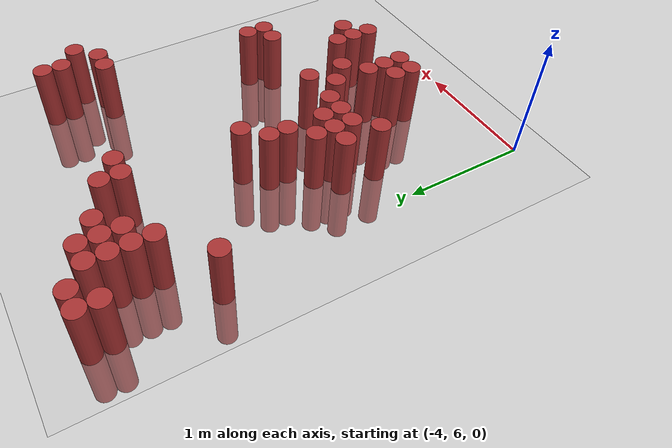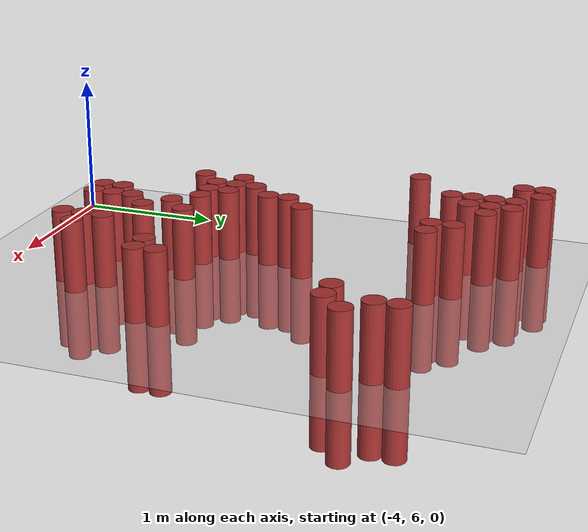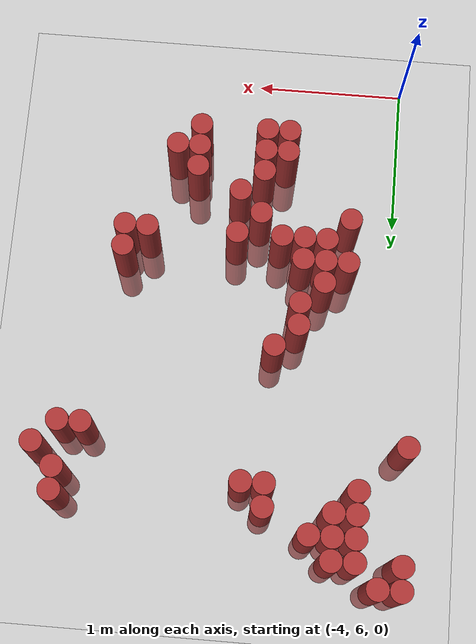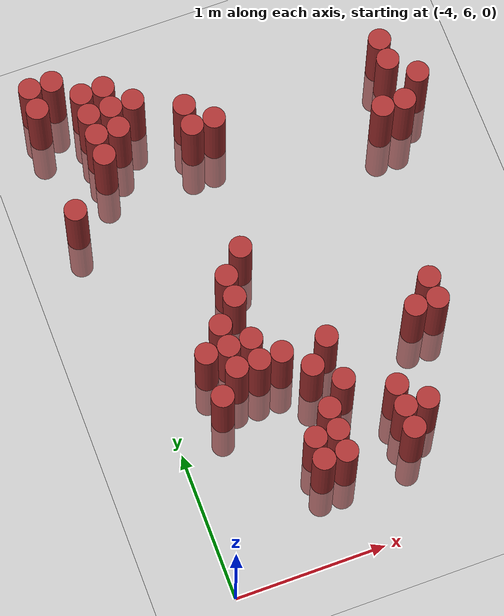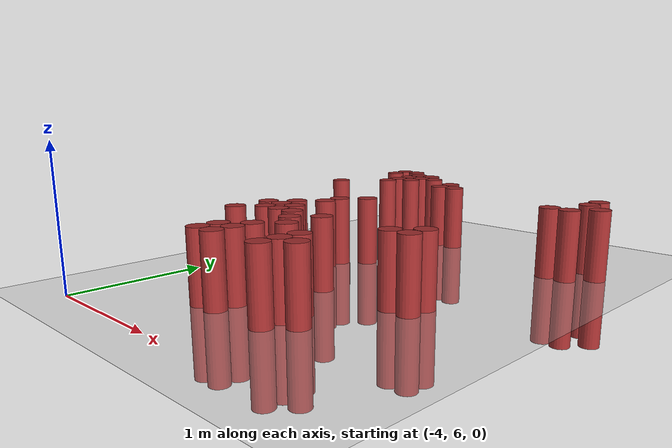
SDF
<sdf version="1.6">
 <world name="world_62">
  <model name="ground_plane">
   <static>1</static>
   <link name="link">
    <collision name="collision">
     <geometry><plane><normal>0 0 1</normal><size>100 100</size></plane></geometry>
     <surface><friction><ode><mu>100</mu><mu2>50</mu2></ode></friction></surface>
    </collision>
    <visual name="visual">
     <cast_shadows>0</cast_shadows>
     <geometry><plane><normal>0 0 1</normal><size>100 100</size></plane></geometry>
     <material>
      <script><uri>file://media/materials/scripts/gazebo.material</uri><name>Gazebo/Grey</name></script>
     </material>
    </visual>
   </link>
  </model>
  <model name="unit_cylinder_150">
   <static>1</static>
   <pose>-4.125000 8.625000 0.000000 0.000000 0.000000 0.000000</pose>
   <link name="link">
    <inertial>
     <mass>1</mass>
     <inertia><ixx>0.145833</ixx><ixy>0</ixy><ixz>0</ixz><iyy>0.145833</iyy><iyz>0</iyz><izz>0.125</izz></inertia>
    </inertial>
    <collision name="collision">
     <geometry><cylinder><radius>0.075000</radius><length>1</length></cylinder></geometry>
    </collision>
    <visual name="visual">
     <geometry><cylinder><radius>0.075000</radius><length>1</length></cylinder></geometry>
     <material>
      <ambient>0.648000 0.192000 0.192000 1</ambient>
      <diffuse>0.648000 0.192000 0.192000 1</diffuse>
     </material>
     <material>
      <script><name>Gazebo/Grey</name><uri>file://media/materials/scripts/gazebo.material</uri></script>
     </material>
    </visual>
   </link>
  </model>
  <model name="unit_cylinder_151">
   <static>1</static>
   <pose>-4.125000 9.375000 0.000000 0.000000 0.000000 0.000000</pose>
   <link name="link">
    <inertial>
     <mass>1</mass>
     <inertia><ixx>0.145833</ixx><ixy>0</ixy><ixz>0</ixz><iyy>0.145833</iyy><iyz>0</iyz><izz>0.125</izz></inertia>
    </inertial>
    <collision name="collision">
     <geometry><cylinder><radius>0.075000</radius><length>1</length></cylinder></geometry>
    </collision>
    <visual name="visual">
     <geometry><cylinder><radius>0.075000</radius><length>1</length></cylinder></geometry>
     <material>
      <ambient>0.648000 0.192000 0.192000 1</ambient>
      <diffuse>0.648000 0.192000 0.192000 1</diffuse>
     </material>
     <material>
      <script><name>Gazebo/Grey</name><uri>file://media/materials/scripts/gazebo.material</uri></script>
     </material>
    </visual>
   </link>
  </model>
  <model name="unit_cylinder_152">
   <static>1</static>
   <pose>-4.125000 9.525000 0.000000 0.000000 0.000000 0.000000</pose>
   <link name="link">
    <inertial>
     <mass>1</mass>
     <inertia><ixx>0.145833</ixx><ixy>0</ixy><ixz>0</ixz><iyy>0.145833</iyy><iyz>0</iyz><izz>0.125</izz></inertia>
    </inertial>
    <collision name="collision">
     <geometry><cylinder><radius>0.075000</radius><length>1</length></cylinder></geometry>
    </collision>
    <visual name="visual">
     <geometry><cylinder><radius>0.075000</radius><length>1</length></cylinder></geometry>
     <material>
      <ambient>0.648000 0.192000 0.192000 1</ambient>
      <diffuse>0.648000 0.192000 0.192000 1</diffuse>
     </material>
     <material>
      <script><name>Gazebo/Grey</name><uri>file://media/materials/scripts/gazebo.material</uri></script>
     </material>
    </visual>
   </link>
  </model>
  <model name="unit_cylinder_157">
   <static>1</static>
   <pose>-3.975000 9.525000 0.000000 0.000000 0.000000 0.000000</pose>
   <link name="link">
    <inertial>
     <mass>1</mass>
     <inertia><ixx>0.145833</ixx><ixy>0</ixy><ixz>0</ixz><iyy>0.145833</iyy><iyz>0</iyz><izz>0.125</izz></inertia>
    </inertial>
    <collision name="collision">
     <geometry><cylinder><radius>0.075000</radius><length>1</length></cylinder></geometry>
    </collision>
    <visual name="visual">
     <geometry><cylinder><radius>0.075000</radius><length>1</length></cylinder></geometry>
     <material>
      <ambient>0.648000 0.192000 0.192000 1</ambient>
      <diffuse>0.648000 0.192000 0.192000 1</diffuse>
     </material>
     <material>
      <script><name>Gazebo/Grey</name><uri>file://media/materials/scripts/gazebo.material</uri></script>
     </material>
    </visual>
   </link>
  </model>
  <model name="unit_cylinder_160">
   <static>1</static>
   <pose>-3.825000 8.925000 0.000000 0.000000 0.000000 0.000000</pose>
   <link name="link">
    <inertial>
     <mass>1</mass>
     <inertia><ixx>0.145833</ixx><ixy>0</ixy><ixz>0</ixz><iyy>0.145833</iyy><iyz>0</iyz><izz>0.125</izz></inertia>
    </inertial>
    <collision name="collision">
     <geometry><cylinder><radius>0.075000</radius><length>1</length></cylinder></geometry>
    </collision>
    <visual name="visual">
     <geometry><cylinder><radius>0.075000</radius><length>1</length></cylinder></geometry>
     <material>
      <ambient>0.648000 0.192000 0.192000 1</ambient>
      <diffuse>0.648000 0.192000 0.192000 1</diffuse>
     </material>
     <material>
      <script><name>Gazebo/Grey</name><uri>file://media/materials/scripts/gazebo.material</uri></script>
     </material>
    </visual>
   </link>
  </model>
  <model name="unit_cylinder_161">
   <static>1</static>
   <pose>-3.825000 9.075000 0.000000 0.000000 0.000000 0.000000</pose>
   <link name="link">
    <inertial>
     <mass>1</mass>
     <inertia><ixx>0.145833</ixx><ixy>0</ixy><ixz>0</ixz><iyy>0.145833</iyy><iyz>0</iyz><izz>0.125</izz></inertia>
    </inertial>
    <collision name="collision">
     <geometry><cylinder><radius>0.075000</radius><length>1</length></cylinder></geometry>
    </collision>
    <visual name="visual">
     <geometry><cylinder><radius>0.075000</radius><length>1</length></cylinder></geometry>
     <material>
      <ambient>0.648000 0.192000 0.192000 1</ambient>
      <diffuse>0.648000 0.192000 0.192000 1</diffuse>
     </material>
     <material>
      <script><name>Gazebo/Grey</name><uri>file://media/materials/scripts/gazebo.material</uri></script>
     </material>
    </visual>
   </link>
  </model>
  <model name="unit_cylinder_162">
   <static>1</static>
   <pose>-3.825000 9.225000 0.000000 0.000000 0.000000 0.000000</pose>
   <link name="link">
    <inertial>
     <mass>1</mass>
     <inertia><ixx>0.145833</ixx><ixy>0</ixy><ixz>0</ixz><iyy>0.145833</iyy><iyz>0</iyz><izz>0.125</izz></inertia>
    </inertial>
    <collision name="collision">
     <geometry><cylinder><radius>0.075000</radius><length>1</length></cylinder></geometry>
    </collision>
    <visual name="visual">
     <geometry><cylinder><radius>0.075000</radius><length>1</length></cylinder></geometry>
     <material>
      <ambient>0.648000 0.192000 0.192000 1</ambient>
      <diffuse>0.648000 0.192000 0.192000 1</diffuse>
     </material>
     <material>
      <script><name>Gazebo/Grey</name><uri>file://media/materials/scripts/gazebo.material</uri></script>
     </material>
    </visual>
   </link>
  </model>
  <model name="unit_cylinder_163">
   <static>1</static>
   <pose>-3.825000 9.375000 0.000000 0.000000 0.000000 0.000000</pose>
   <link name="link">
    <inertial>
     <mass>1</mass>
     <inertia><ixx>0.145833</ixx><ixy>0</ixy><ixz>0</ixz><iyy>0.145833</iyy><iyz>0</iyz><izz>0.125</izz></inertia>
    </inertial>
    <collision name="collision">
     <geometry><cylinder><radius>0.075000</radius><length>1</length></cylinder></geometry>
    </collision>
    <visual name="visual">
     <geometry><cylinder><radius>0.075000</radius><length>1</length></cylinder></geometry>
     <material>
      <ambient>0.648000 0.192000 0.192000 1</ambient>
      <diffuse>0.648000 0.192000 0.192000 1</diffuse>
     </material>
     <material>
      <script><name>Gazebo/Grey</name><uri>file://media/materials/scripts/gazebo.material</uri></script>
     </material>
    </visual>
   </link>
  </model>
  <model name="unit_cylinder_167">
   <static>1</static>
   <pose>-3.675000 7.125000 0.000000 0.000000 0.000000 0.000000</pose>
   <link name="link">
    <inertial>
     <mass>1</mass>
     <inertia><ixx>0.145833</ixx><ixy>0</ixy><ixz>0</ixz><iyy>0.145833</iyy><iyz>0</iyz><izz>0.125</izz></inertia>
    </inertial>
    <collision name="collision">
     <geometry><cylinder><radius>0.075000</radius><length>1</length></cylinder></geometry>
    </collision>
    <visual name="visual">
     <geometry><cylinder><radius>0.075000</radius><length>1</length></cylinder></geometry>
     <material>
      <ambient>0.648000 0.192000 0.192000 1</ambient>
      <diffuse>0.648000 0.192000 0.192000 1</diffuse>
     </material>
     <material>
      <script><name>Gazebo/Grey</name><uri>file://media/materials/scripts/gazebo.material</uri></script>
     </material>
    </visual>
   </link>
  </model>
  <model name="unit_cylinder_168">
   <static>1</static>
   <pose>-3.675000 7.425000 0.000000 0.000000 0.000000 0.000000</pose>
   <link name="link">
    <inertial>
     <mass>1</mass>
     <inertia><ixx>0.145833</ixx><ixy>0</ixy><ixz>0</ixz><iyy>0.145833</iyy><iyz>0</iyz><izz>0.125</izz></inertia>
    </inertial>
    <collision name="collision">
     <geometry><cylinder><radius>0.075000</radius><length>1</length></cylinder></geometry>
    </collision>
    <visual name="visual">
     <geometry><cylinder><radius>0.075000</radius><length>1</length></cylinder></geometry>
     <material>
      <ambient>0.648000 0.192000 0.192000 1</ambient>
      <diffuse>0.648000 0.192000 0.192000 1</diffuse>
     </material>
     <material>
      <script><name>Gazebo/Grey</name><uri>file://media/materials/scripts/gazebo.material</uri></script>
     </material>
    </visual>
   </link>
  </model>
  <model name="unit_cylinder_169">
   <static>1</static>
   <pose>-3.675000 9.075000 0.000000 0.000000 0.000000 0.000000</pose>
   <link name="link">
    <inertial>
     <mass>1</mass>
     <inertia><ixx>0.145833</ixx><ixy>0</ixy><ixz>0</ixz><iyy>0.145833</iyy><iyz>0</iyz><izz>0.125</izz></inertia>
    </inertial>
    <collision name="collision">
     <geometry><cylinder><radius>0.075000</radius><length>1</length></cylinder></geometry>
    </collision>
    <visual name="visual">
     <geometry><cylinder><radius>0.075000</radius><length>1</length></cylinder></geometry>
     <material>
      <ambient>0.648000 0.192000 0.192000 1</ambient>
      <diffuse>0.648000 0.192000 0.192000 1</diffuse>
     </material>
     <material>
      <script><name>Gazebo/Grey</name><uri>file://media/materials/scripts/gazebo.material</uri></script>
     </material>
    </visual>
   </link>
  </model>
  <model name="unit_cylinder_170">
   <static>1</static>
   <pose>-3.675000 9.225000 0.000000 0.000000 0.000000 0.000000</pose>
   <link name="link">
    <inertial>
     <mass>1</mass>
     <inertia><ixx>0.145833</ixx><ixy>0</ixy><ixz>0</ixz><iyy>0.145833</iyy><iyz>0</iyz><izz>0.125</izz></inertia>
    </inertial>
    <collision name="collision">
     <geometry><cylinder><radius>0.075000</radius><length>1</length></cylinder></geometry>
    </collision>
    <visual name="visual">
     <geometry><cylinder><radius>0.075000</radius><length>1</length></cylinder></geometry>
     <material>
      <ambient>0.648000 0.192000 0.192000 1</ambient>
      <diffuse>0.648000 0.192000 0.192000 1</diffuse>
     </material>
     <material>
      <script><name>Gazebo/Grey</name><uri>file://media/materials/scripts/gazebo.material</uri></script>
     </material>
    </visual>
   </link>
  </model>
  <model name="unit_cylinder_171">
   <static>1</static>
   <pose>-3.675000 9.375000 0.000000 0.000000 0.000000 0.000000</pose>
   <link name="link">
    <inertial>
     <mass>1</mass>
     <inertia><ixx>0.145833</ixx><ixy>0</ixy><ixz>0</ixz><iyy>0.145833</iyy><iyz>0</iyz><izz>0.125</izz></inertia>
    </inertial>
    <collision name="collision">
     <geometry><cylinder><radius>0.075000</radius><length>1</length></cylinder></geometry>
    </collision>
    <visual name="visual">
     <geometry><cylinder><radius>0.075000</radius><length>1</length></cylinder></geometry>
     <material>
      <ambient>0.648000 0.192000 0.192000 1</ambient>
      <diffuse>0.648000 0.192000 0.192000 1</diffuse>
     </material>
     <material>
      <script><name>Gazebo/Grey</name><uri>file://media/materials/scripts/gazebo.material</uri></script>
     </material>
    </visual>
   </link>
  </model>
  <model name="unit_cylinder_177">
   <static>1</static>
   <pose>-3.525000 7.275000 0.000000 0.000000 0.000000 0.000000</pose>
   <link name="link">
    <inertial>
     <mass>1</mass>
     <inertia><ixx>0.145833</ixx><ixy>0</ixy><ixz>0</ixz><iyy>0.145833</iyy><iyz>0</iyz><izz>0.125</izz></inertia>
    </inertial>
    <collision name="collision">
     <geometry><cylinder><radius>0.075000</radius><length>1</length></cylinder></geometry>
    </collision>
    <visual name="visual">
     <geometry><cylinder><radius>0.075000</radius><length>1</length></cylinder></geometry>
     <material>
      <ambient>0.648000 0.192000 0.192000 1</ambient>
      <diffuse>0.648000 0.192000 0.192000 1</diffuse>
     </material>
     <material>
      <script><name>Gazebo/Grey</name><uri>file://media/materials/scripts/gazebo.material</uri></script>
     </material>
    </visual>
   </link>
  </model>
  <model name="unit_cylinder_178">
   <static>1</static>
   <pose>-3.525000 7.425000 0.000000 0.000000 0.000000 0.000000</pose>
   <link name="link">
    <inertial>
     <mass>1</mass>
     <inertia><ixx>0.145833</ixx><ixy>0</ixy><ixz>0</ixz><iyy>0.145833</iyy><iyz>0</iyz><izz>0.125</izz></inertia>
    </inertial>
    <collision name="collision">
     <geometry><cylinder><radius>0.075000</radius><length>1</length></cylinder></geometry>
    </collision>
    <visual name="visual">
     <geometry><cylinder><radius>0.075000</radius><length>1</length></cylinder></geometry>
     <material>
      <ambient>0.648000 0.192000 0.192000 1</ambient>
      <diffuse>0.648000 0.192000 0.192000 1</diffuse>
     </material>
     <material>
      <script><name>Gazebo/Grey</name><uri>file://media/materials/scripts/gazebo.material</uri></script>
     </material>
    </visual>
   </link>
  </model>
  <model name="unit_cylinder_179">
   <static>1</static>
   <pose>-3.525000 7.575000 0.000000 0.000000 0.000000 0.000000</pose>
   <link name="link">
    <inertial>
     <mass>1</mass>
     <inertia><ixx>0.145833</ixx><ixy>0</ixy><ixz>0</ixz><iyy>0.145833</iyy><iyz>0</iyz><izz>0.125</izz></inertia>
    </inertial>
    <collision name="collision">
     <geometry><cylinder><radius>0.075000</radius><length>1</length></cylinder></geometry>
    </collision>
    <visual name="visual">
     <geometry><cylinder><radius>0.075000</radius><length>1</length></cylinder></geometry>
     <material>
      <ambient>0.648000 0.192000 0.192000 1</ambient>
      <diffuse>0.648000 0.192000 0.192000 1</diffuse>
     </material>
     <material>
      <script><name>Gazebo/Grey</name><uri>file://media/materials/scripts/gazebo.material</uri></script>
     </material>
    </visual>
   </link>
  </model>
  <model name="unit_cylinder_180">
   <static>1</static>
   <pose>-3.525000 9.225000 0.000000 0.000000 0.000000 0.000000</pose>
   <link name="link">
    <inertial>
     <mass>1</mass>
     <inertia><ixx>0.145833</ixx><ixy>0</ixy><ixz>0</ixz><iyy>0.145833</iyy><iyz>0</iyz><izz>0.125</izz></inertia>
    </inertial>
    <collision name="collision">
     <geometry><cylinder><radius>0.075000</radius><length>1</length></cylinder></geometry>
    </collision>
    <visual name="visual">
     <geometry><cylinder><radius>0.075000</radius><length>1</length></cylinder></geometry>
     <material>
      <ambient>0.648000 0.192000 0.192000 1</ambient>
      <diffuse>0.648000 0.192000 0.192000 1</diffuse>
     </material>
     <material>
      <script><name>Gazebo/Grey</name><uri>file://media/materials/scripts/gazebo.material</uri></script>
     </material>
    </visual>
   </link>
  </model>
  <model name="unit_cylinder_185">
   <static>1</static>
   <pose>-3.375000 7.275000 0.000000 0.000000 0.000000 0.000000</pose>
   <link name="link">
    <inertial>
     <mass>1</mass>
     <inertia><ixx>0.145833</ixx><ixy>0</ixy><ixz>0</ixz><iyy>0.145833</iyy><iyz>0</iyz><izz>0.125</izz></inertia>
    </inertial>
    <collision name="collision">
     <geometry><cylinder><radius>0.075000</radius><length>1</length></cylinder></geometry>
    </collision>
    <visual name="visual">
     <geometry><cylinder><radius>0.075000</radius><length>1</length></cylinder></geometry>
     <material>
      <ambient>0.648000 0.192000 0.192000 1</ambient>
      <diffuse>0.648000 0.192000 0.192000 1</diffuse>
     </material>
     <material>
      <script><name>Gazebo/Grey</name><uri>file://media/materials/scripts/gazebo.material</uri></script>
     </material>
    </visual>
   </link>
  </model>
  <model name="unit_cylinder_186">
   <static>1</static>
   <pose>-3.375000 7.425000 0.000000 0.000000 0.000000 0.000000</pose>
   <link name="link">
    <inertial>
     <mass>1</mass>
     <inertia><ixx>0.145833</ixx><ixy>0</ixy><ixz>0</ixz><iyy>0.145833</iyy><iyz>0</iyz><izz>0.125</izz></inertia>
    </inertial>
    <collision name="collision">
     <geometry><cylinder><radius>0.075000</radius><length>1</length></cylinder></geometry>
    </collision>
    <visual name="visual">
     <geometry><cylinder><radius>0.075000</radius><length>1</length></cylinder></geometry>
     <material>
      <ambient>0.648000 0.192000 0.192000 1</ambient>
      <diffuse>0.648000 0.192000 0.192000 1</diffuse>
     </material>
     <material>
      <script><name>Gazebo/Grey</name><uri>file://media/materials/scripts/gazebo.material</uri></script>
     </material>
    </visual>
   </link>
  </model>
  <model name="unit_cylinder_187">
   <static>1</static>
   <pose>-3.375000 7.725000 0.000000 0.000000 0.000000 0.000000</pose>
   <link name="link">
    <inertial>
     <mass>1</mass>
     <inertia><ixx>0.145833</ixx><ixy>0</ixy><ixz>0</ixz><iyy>0.145833</iyy><iyz>0</iyz><izz>0.125</izz></inertia>
    </inertial>
    <collision name="collision">
     <geometry><cylinder><radius>0.075000</radius><length>1</length></cylinder></geometry>
    </collision>
    <visual name="visual">
     <geometry><cylinder><radius>0.075000</radius><length>1</length></cylinder></geometry>
     <material>
      <ambient>0.648000 0.192000 0.192000 1</ambient>
      <diffuse>0.648000 0.192000 0.192000 1</diffuse>
     </material>
     <material>
      <script><name>Gazebo/Grey</name><uri>file://media/materials/scripts/gazebo.material</uri></script>
     </material>
    </visual>
   </link>
  </model>
  <model name="unit_cylinder_188">
   <static>1</static>
   <pose>-3.375000 7.875000 0.000000 0.000000 0.000000 0.000000</pose>
   <link name="link">
    <inertial>
     <mass>1</mass>
     <inertia><ixx>0.145833</ixx><ixy>0</ixy><ixz>0</ixz><iyy>0.145833</iyy><iyz>0</iyz><izz>0.125</izz></inertia>
    </inertial>
    <collision name="collision">
     <geometry><cylinder><radius>0.075000</radius><length>1</length></cylinder></geometry>
    </collision>
    <visual name="visual">
     <geometry><cylinder><radius>0.075000</radius><length>1</length></cylinder></geometry>
     <material>
      <ambient>0.648000 0.192000 0.192000 1</ambient>
      <diffuse>0.648000 0.192000 0.192000 1</diffuse>
     </material>
     <material>
      <script><name>Gazebo/Grey</name><uri>file://media/materials/scripts/gazebo.material</uri></script>
     </material>
    </visual>
   </link>
  </model>
  <model name="unit_cylinder_190">
   <static>1</static>
   <pose>-3.225000 6.525000 0.000000 0.000000 0.000000 0.000000</pose>
   <link name="link">
    <inertial>
     <mass>1</mass>
     <inertia><ixx>0.145833</ixx><ixy>0</ixy><ixz>0</ixz><iyy>0.145833</iyy><iyz>0</iyz><izz>0.125</izz></inertia>
    </inertial>
    <collision name="collision">
     <geometry><cylinder><radius>0.075000</radius><length>1</length></cylinder></geometry>
    </collision>
    <visual name="visual">
     <geometry><cylinder><radius>0.075000</radius><length>1</length></cylinder></geometry>
     <material>
      <ambient>0.648000 0.192000 0.192000 1</ambient>
      <diffuse>0.648000 0.192000 0.192000 1</diffuse>
     </material>
     <material>
      <script><name>Gazebo/Grey</name><uri>file://media/materials/scripts/gazebo.material</uri></script>
     </material>
    </visual>
   </link>
  </model>
  <model name="unit_cylinder_191">
   <static>1</static>
   <pose>-3.225000 6.675000 0.000000 0.000000 0.000000 0.000000</pose>
   <link name="link">
    <inertial>
     <mass>1</mass>
     <inertia><ixx>0.145833</ixx><ixy>0</ixy><ixz>0</ixz><iyy>0.145833</iyy><iyz>0</iyz><izz>0.125</izz></inertia>
    </inertial>
    <collision name="collision">
     <geometry><cylinder><radius>0.075000</radius><length>1</length></cylinder></geometry>
    </collision>
    <visual name="visual">
     <geometry><cylinder><radius>0.075000</radius><length>1</length></cylinder></geometry>
     <material>
      <ambient>0.648000 0.192000 0.192000 1</ambient>
      <diffuse>0.648000 0.192000 0.192000 1</diffuse>
     </material>
     <material>
      <script><name>Gazebo/Grey</name><uri>file://media/materials/scripts/gazebo.material</uri></script>
     </material>
    </visual>
   </link>
  </model>
  <model name="unit_cylinder_192">
   <static>1</static>
   <pose>-3.225000 7.275000 0.000000 0.000000 0.000000 0.000000</pose>
   <link name="link">
    <inertial>
     <mass>1</mass>
     <inertia><ixx>0.145833</ixx><ixy>0</ixy><ixz>0</ixz><iyy>0.145833</iyy><iyz>0</iyz><izz>0.125</izz></inertia>
    </inertial>
    <collision name="collision">
     <geometry><cylinder><radius>0.075000</radius><length>1</length></cylinder></geometry>
    </collision>
    <visual name="visual">
     <geometry><cylinder><radius>0.075000</radius><length>1</length></cylinder></geometry>
     <material>
      <ambient>0.648000 0.192000 0.192000 1</ambient>
      <diffuse>0.648000 0.192000 0.192000 1</diffuse>
     </material>
     <material>
      <script><name>Gazebo/Grey</name><uri>file://media/materials/scripts/gazebo.material</uri></script>
     </material>
    </visual>
   </link>
  </model>
  <model name="unit_cylinder_193">
   <static>1</static>
   <pose>-3.225000 8.025000 0.000000 0.000000 0.000000 0.000000</pose>
   <link name="link">
    <inertial>
     <mass>1</mass>
     <inertia><ixx>0.145833</ixx><ixy>0</ixy><ixz>0</ixz><iyy>0.145833</iyy><iyz>0</iyz><izz>0.125</izz></inertia>
    </inertial>
    <collision name="collision">
     <geometry><cylinder><radius>0.075000</radius><length>1</length></cylinder></geometry>
    </collision>
    <visual name="visual">
     <geometry><cylinder><radius>0.075000</radius><length>1</length></cylinder></geometry>
     <material>
      <ambient>0.648000 0.192000 0.192000 1</ambient>
      <diffuse>0.648000 0.192000 0.192000 1</diffuse>
     </material>
     <material>
      <script><name>Gazebo/Grey</name><uri>file://media/materials/scripts/gazebo.material</uri></script>
     </material>
    </visual>
   </link>
  </model>
  <model name="unit_cylinder_194">
   <static>1</static>
   <pose>-3.225000 8.925000 0.000000 0.000000 0.000000 0.000000</pose>
   <link name="link">
    <inertial>
     <mass>1</mass>
     <inertia><ixx>0.145833</ixx><ixy>0</ixy><ixz>0</ixz><iyy>0.145833</iyy><iyz>0</iyz><izz>0.125</izz></inertia>
    </inertial>
    <collision name="collision">
     <geometry><cylinder><radius>0.075000</radius><length>1</length></cylinder></geometry>
    </collision>
    <visual name="visual">
     <geometry><cylinder><radius>0.075000</radius><length>1</length></cylinder></geometry>
     <material>
      <ambient>0.648000 0.192000 0.192000 1</ambient>
      <diffuse>0.648000 0.192000 0.192000 1</diffuse>
     </material>
     <material>
      <script><name>Gazebo/Grey</name><uri>file://media/materials/scripts/gazebo.material</uri></script>
     </material>
    </visual>
   </link>
  </model>
  <model name="unit_cylinder_195">
   <static>1</static>
   <pose>-3.225000 9.075000 0.000000 0.000000 0.000000 0.000000</pose>
   <link name="link">
    <inertial>
     <mass>1</mass>
     <inertia><ixx>0.145833</ixx><ixy>0</ixy><ixz>0</ixz><iyy>0.145833</iyy><iyz>0</iyz><izz>0.125</izz></inertia>
    </inertial>
    <collision name="collision">
     <geometry><cylinder><radius>0.075000</radius><length>1</length></cylinder></geometry>
    </collision>
    <visual name="visual">
     <geometry><cylinder><radius>0.075000</radius><length>1</length></cylinder></geometry>
     <material>
      <ambient>0.648000 0.192000 0.192000 1</ambient>
      <diffuse>0.648000 0.192000 0.192000 1</diffuse>
     </material>
     <material>
      <script><name>Gazebo/Grey</name><uri>file://media/materials/scripts/gazebo.material</uri></script>
     </material>
    </visual>
   </link>
  </model>
  <model name="unit_cylinder_196">
   <static>1</static>
   <pose>-3.075000 6.525000 0.000000 0.000000 0.000000 0.000000</pose>
   <link name="link">
    <inertial>
     <mass>1</mass>
     <inertia><ixx>0.145833</ixx><ixy>0</ixy><ixz>0</ixz><iyy>0.145833</iyy><iyz>0</iyz><izz>0.125</izz></inertia>
    </inertial>
    <collision name="collision">
     <geometry><cylinder><radius>0.075000</radius><length>1</length></cylinder></geometry>
    </collision>
    <visual name="visual">
     <geometry><cylinder><radius>0.075000</radius><length>1</length></cylinder></geometry>
     <material>
      <ambient>0.648000 0.192000 0.192000 1</ambient>
      <diffuse>0.648000 0.192000 0.192000 1</diffuse>
     </material>
     <material>
      <script><name>Gazebo/Grey</name><uri>file://media/materials/scripts/gazebo.material</uri></script>
     </material>
    </visual>
   </link>
  </model>
  <model name="unit_cylinder_197">
   <static>1</static>
   <pose>-3.075000 6.675000 0.000000 0.000000 0.000000 0.000000</pose>
   <link name="link">
    <inertial>
     <mass>1</mass>
     <inertia><ixx>0.145833</ixx><ixy>0</ixy><ixz>0</ixz><iyy>0.145833</iyy><iyz>0</iyz><izz>0.125</izz></inertia>
    </inertial>
    <collision name="collision">
     <geometry><cylinder><radius>0.075000</radius><length>1</length></cylinder></geometry>
    </collision>
    <visual name="visual">
     <geometry><cylinder><radius>0.075000</radius><length>1</length></cylinder></geometry>
     <material>
      <ambient>0.648000 0.192000 0.192000 1</ambient>
      <diffuse>0.648000 0.192000 0.192000 1</diffuse>
     </material>
     <material>
      <script><name>Gazebo/Grey</name><uri>file://media/materials/scripts/gazebo.material</uri></script>
     </material>
    </visual>
   </link>
  </model>
  <model name="unit_cylinder_198">
   <static>1</static>
   <pose>-3.075000 6.825000 0.000000 0.000000 0.000000 0.000000</pose>
   <link name="link">
    <inertial>
     <mass>1</mass>
     <inertia><ixx>0.145833</ixx><ixy>0</ixy><ixz>0</ixz><iyy>0.145833</iyy><iyz>0</iyz><izz>0.125</izz></inertia>
    </inertial>
    <collision name="collision">
     <geometry><cylinder><radius>0.075000</radius><length>1</length></cylinder></geometry>
    </collision>
    <visual name="visual">
     <geometry><cylinder><radius>0.075000</radius><length>1</length></cylinder></geometry>
     <material>
      <ambient>0.648000 0.192000 0.192000 1</ambient>
      <diffuse>0.648000 0.192000 0.192000 1</diffuse>
     </material>
     <material>
      <script><name>Gazebo/Grey</name><uri>file://media/materials/scripts/gazebo.material</uri></script>
     </material>
    </visual>
   </link>
  </model>
  <model name="unit_cylinder_199">
   <static>1</static>
   <pose>-3.075000 7.125000 0.000000 0.000000 0.000000 0.000000</pose>
   <link name="link">
    <inertial>
     <mass>1</mass>
     <inertia><ixx>0.145833</ixx><ixy>0</ixy><ixz>0</ixz><iyy>0.145833</iyy><iyz>0</iyz><izz>0.125</izz></inertia>
    </inertial>
    <collision name="collision">
     <geometry><cylinder><radius>0.075000</radius><length>1</length></cylinder></geometry>
    </collision>
    <visual name="visual">
     <geometry><cylinder><radius>0.075000</radius><length>1</length></cylinder></geometry>
     <material>
      <ambient>0.648000 0.192000 0.192000 1</ambient>
      <diffuse>0.648000 0.192000 0.192000 1</diffuse>
     </material>
     <material>
      <script><name>Gazebo/Grey</name><uri>file://media/materials/scripts/gazebo.material</uri></script>
     </material>
    </visual>
   </link>
  </model>
  <model name="unit_cylinder_200">
   <static>1</static>
   <pose>-3.075000 8.925000 0.000000 0.000000 0.000000 0.000000</pose>
   <link name="link">
    <inertial>
     <mass>1</mass>
     <inertia><ixx>0.145833</ixx><ixy>0</ixy><ixz>0</ixz><iyy>0.145833</iyy><iyz>0</iyz><izz>0.125</izz></inertia>
    </inertial>
    <collision name="collision">
     <geometry><cylinder><radius>0.075000</radius><length>1</length></cylinder></geometry>
    </collision>
    <visual name="visual">
     <geometry><cylinder><radius>0.075000</radius><length>1</length></cylinder></geometry>
     <material>
      <ambient>0.648000 0.192000 0.192000 1</ambient>
      <diffuse>0.648000 0.192000 0.192000 1</diffuse>
     </material>
     <material>
      <script><name>Gazebo/Grey</name><uri>file://media/materials/scripts/gazebo.material</uri></script>
     </material>
    </visual>
   </link>
  </model>
  <model name="unit_cylinder_201">
   <static>1</static>
   <pose>-2.925000 6.975000 0.000000 0.000000 0.000000 0.000000</pose>
   <link name="link">
    <inertial>
     <mass>1</mass>
     <inertia><ixx>0.145833</ixx><ixy>0</ixy><ixz>0</ixz><iyy>0.145833</iyy><iyz>0</iyz><izz>0.125</izz></inertia>
    </inertial>
    <collision name="collision">
     <geometry><cylinder><radius>0.075000</radius><length>1</length></cylinder></geometry>
    </collision>
    <visual name="visual">
     <geometry><cylinder><radius>0.075000</radius><length>1</length></cylinder></geometry>
     <material>
      <ambient>0.648000 0.192000 0.192000 1</ambient>
      <diffuse>0.648000 0.192000 0.192000 1</diffuse>
     </material>
     <material>
      <script><name>Gazebo/Grey</name><uri>file://media/materials/scripts/gazebo.material</uri></script>
     </material>
    </visual>
   </link>
  </model>
  <model name="unit_cylinder_202">
   <static>1</static>
   <pose>-2.925000 7.275000 0.000000 0.000000 0.000000 0.000000</pose>
   <link name="link">
    <inertial>
     <mass>1</mass>
     <inertia><ixx>0.145833</ixx><ixy>0</ixy><ixz>0</ixz><iyy>0.145833</iyy><iyz>0</iyz><izz>0.125</izz></inertia>
    </inertial>
    <collision name="collision">
     <geometry><cylinder><radius>0.075000</radius><length>1</length></cylinder></geometry>
    </collision>
    <visual name="visual">
     <geometry><cylinder><radius>0.075000</radius><length>1</length></cylinder></geometry>
     <material>
      <ambient>0.648000 0.192000 0.192000 1</ambient>
      <diffuse>0.648000 0.192000 0.192000 1</diffuse>
     </material>
     <material>
      <script><name>Gazebo/Grey</name><uri>file://media/materials/scripts/gazebo.material</uri></script>
     </material>
    </visual>
   </link>
  </model>
  <model name="unit_cylinder_203">
   <static>1</static>
   <pose>-2.625000 6.525000 0.000000 0.000000 0.000000 0.000000</pose>
   <link name="link">
    <inertial>
     <mass>1</mass>
     <inertia><ixx>0.145833</ixx><ixy>0</ixy><ixz>0</ixz><iyy>0.145833</iyy><iyz>0</iyz><izz>0.125</izz></inertia>
    </inertial>
    <collision name="collision">
     <geometry><cylinder><radius>0.075000</radius><length>1</length></cylinder></geometry>
    </collision>
    <visual name="visual">
     <geometry><cylinder><radius>0.075000</radius><length>1</length></cylinder></geometry>
     <material>
      <ambient>0.648000 0.192000 0.192000 1</ambient>
      <diffuse>0.648000 0.192000 0.192000 1</diffuse>
     </material>
     <material>
      <script><name>Gazebo/Grey</name><uri>file://media/materials/scripts/gazebo.material</uri></script>
     </material>
    </visual>
   </link>
  </model>
  <model name="unit_cylinder_204">
   <static>1</static>
   <pose>-2.625000 6.675000 0.000000 0.000000 0.000000 0.000000</pose>
   <link name="link">
    <inertial>
     <mass>1</mass>
     <inertia><ixx>0.145833</ixx><ixy>0</ixy><ixz>0</ixz><iyy>0.145833</iyy><iyz>0</iyz><izz>0.125</izz></inertia>
    </inertial>
    <collision name="collision">
     <geometry><cylinder><radius>0.075000</radius><length>1</length></cylinder></geometry>
    </collision>
    <visual name="visual">
     <geometry><cylinder><radius>0.075000</radius><length>1</length></cylinder></geometry>
     <material>
      <ambient>0.648000 0.192000 0.192000 1</ambient>
      <diffuse>0.648000 0.192000 0.192000 1</diffuse>
     </material>
     <material>
      <script><name>Gazebo/Grey</name><uri>file://media/materials/scripts/gazebo.material</uri></script>
     </material>
    </visual>
   </link>
  </model>
  <model name="unit_cylinder_205">
   <static>1</static>
   <pose>-2.625000 6.825000 0.000000 0.000000 0.000000 0.000000</pose>
   <link name="link">
    <inertial>
     <mass>1</mass>
     <inertia><ixx>0.145833</ixx><ixy>0</ixy><ixz>0</ixz><iyy>0.145833</iyy><iyz>0</iyz><izz>0.125</izz></inertia>
    </inertial>
    <collision name="collision">
     <geometry><cylinder><radius>0.075000</radius><length>1</length></cylinder></geometry>
    </collision>
    <visual name="visual">
     <geometry><cylinder><radius>0.075000</radius><length>1</length></cylinder></geometry>
     <material>
      <ambient>0.648000 0.192000 0.192000 1</ambient>
      <diffuse>0.648000 0.192000 0.192000 1</diffuse>
     </material>
     <material>
      <script><name>Gazebo/Grey</name><uri>file://media/materials/scripts/gazebo.material</uri></script>
     </material>
    </visual>
   </link>
  </model>
  <model name="unit_cylinder_206">
   <static>1</static>
   <pose>-2.475000 6.675000 0.000000 0.000000 0.000000 0.000000</pose>
   <link name="link">
    <inertial>
     <mass>1</mass>
     <inertia><ixx>0.145833</ixx><ixy>0</ixy><ixz>0</ixz><iyy>0.145833</iyy><iyz>0</iyz><izz>0.125</izz></inertia>
    </inertial>
    <collision name="collision">
     <geometry><cylinder><radius>0.075000</radius><length>1</length></cylinder></geometry>
    </collision>
    <visual name="visual">
     <geometry><cylinder><radius>0.075000</radius><length>1</length></cylinder></geometry>
     <material>
      <ambient>0.648000 0.192000 0.192000 1</ambient>
      <diffuse>0.648000 0.192000 0.192000 1</diffuse>
     </material>
     <material>
      <script><name>Gazebo/Grey</name><uri>file://media/materials/scripts/gazebo.material</uri></script>
     </material>
    </visual>
   </link>
  </model>
  <model name="unit_cylinder_207">
   <static>1</static>
   <pose>-2.325000 7.275000 0.000000 0.000000 0.000000 0.000000</pose>
   <link name="link">
    <inertial>
     <mass>1</mass>
     <inertia><ixx>0.145833</ixx><ixy>0</ixy><ixz>0</ixz><iyy>0.145833</iyy><iyz>0</iyz><izz>0.125</izz></inertia>
    </inertial>
    <collision name="collision">
     <geometry><cylinder><radius>0.075000</radius><length>1</length></cylinder></geometry>
    </collision>
    <visual name="visual">
     <geometry><cylinder><radius>0.075000</radius><length>1</length></cylinder></geometry>
     <material>
      <ambient>0.648000 0.192000 0.192000 1</ambient>
      <diffuse>0.648000 0.192000 0.192000 1</diffuse>
     </material>
     <material>
      <script><name>Gazebo/Grey</name><uri>file://media/materials/scripts/gazebo.material</uri></script>
     </material>
    </visual>
   </link>
  </model>
  <model name="unit_cylinder_208">
   <static>1</static>
   <pose>-2.175000 7.275000 0.000000 0.000000 0.000000 0.000000</pose>
   <link name="link">
    <inertial>
     <mass>1</mass>
     <inertia><ixx>0.145833</ixx><ixy>0</ixy><ixz>0</ixz><iyy>0.145833</iyy><iyz>0</iyz><izz>0.125</izz></inertia>
    </inertial>
    <collision name="collision">
     <geometry><cylinder><radius>0.075000</radius><length>1</length></cylinder></geometry>
    </collision>
    <visual name="visual">
     <geometry><cylinder><radius>0.075000</radius><length>1</length></cylinder></geometry>
     <material>
      <ambient>0.648000 0.192000 0.192000 1</ambient>
      <diffuse>0.648000 0.192000 0.192000 1</diffuse>
     </material>
     <material>
      <script><name>Gazebo/Grey</name><uri>file://media/materials/scripts/gazebo.material</uri></script>
     </material>
    </visual>
   </link>
  </model>
  <model name="unit_cylinder_209">
   <static>1</static>
   <pose>-2.175000 7.425000 0.000000 0.000000 0.000000 0.000000</pose>
   <link name="link">
    <inertial>
     <mass>1</mass>
     <inertia><ixx>0.145833</ixx><ixy>0</ixy><ixz>0</ixz><iyy>0.145833</iyy><iyz>0</iyz><izz>0.125</izz></inertia>
    </inertial>
    <collision name="collision">
     <geometry><cylinder><radius>0.075000</radius><length>1</length></cylinder></geometry>
    </collision>
    <visual name="visual">
     <geometry><cylinder><radius>0.075000</radius><length>1</length></cylinder></geometry>
     <material>
      <ambient>0.648000 0.192000 0.192000 1</ambient>
      <diffuse>0.648000 0.192000 0.192000 1</diffuse>
     </material>
     <material>
      <script><name>Gazebo/Grey</name><uri>file://media/materials/scripts/gazebo.material</uri></script>
     </material>
    </visual>
   </link>
  </model>
  <model name="unit_cylinder_211">
   <static>1</static>
   <pose>-2.025000 8.625000 0.000000 0.000000 0.000000 0.000000</pose>
   <link name="link">
    <inertial>
     <mass>1</mass>
     <inertia><ixx>0.145833</ixx><ixy>0</ixy><ixz>0</ixz><iyy>0.145833</iyy><iyz>0</iyz><izz>0.125</izz></inertia>
    </inertial>
    <collision name="collision">
     <geometry><cylinder><radius>0.075000</radius><length>1</length></cylinder></geometry>
    </collision>
    <visual name="visual">
     <geometry><cylinder><radius>0.075000</radius><length>1</length></cylinder></geometry>
     <material>
      <ambient>0.648000 0.192000 0.192000 1</ambient>
      <diffuse>0.648000 0.192000 0.192000 1</diffuse>
     </material>
     <material>
      <script><name>Gazebo/Grey</name><uri>file://media/materials/scripts/gazebo.material</uri></script>
     </material>
    </visual>
   </link>
  </model>
  <model name="unit_cylinder_214">
   <static>1</static>
   <pose>-1.875000 8.625000 0.000000 0.000000 0.000000 0.000000</pose>
   <link name="link">
    <inertial>
     <mass>1</mass>
     <inertia><ixx>0.145833</ixx><ixy>0</ixy><ixz>0</ixz><iyy>0.145833</iyy><iyz>0</iyz><izz>0.125</izz></inertia>
    </inertial>
    <collision name="collision">
     <geometry><cylinder><radius>0.075000</radius><length>1</length></cylinder></geometry>
    </collision>
    <visual name="visual">
     <geometry><cylinder><radius>0.075000</radius><length>1</length></cylinder></geometry>
     <material>
      <ambient>0.648000 0.192000 0.192000 1</ambient>
      <diffuse>0.648000 0.192000 0.192000 1</diffuse>
     </material>
     <material>
      <script><name>Gazebo/Grey</name><uri>file://media/materials/scripts/gazebo.material</uri></script>
     </material>
    </visual>
   </link>
  </model>
  <model name="unit_cylinder_215">
   <static>1</static>
   <pose>-1.875000 8.925000 0.000000 0.000000 0.000000 0.000000</pose>
   <link name="link">
    <inertial>
     <mass>1</mass>
     <inertia><ixx>0.145833</ixx><ixy>0</ixy><ixz>0</ixz><iyy>0.145833</iyy><iyz>0</iyz><izz>0.125</izz></inertia>
    </inertial>
    <collision name="collision">
     <geometry><cylinder><radius>0.075000</radius><length>1</length></cylinder></geometry>
    </collision>
    <visual name="visual">
     <geometry><cylinder><radius>0.075000</radius><length>1</length></cylinder></geometry>
     <material>
      <ambient>0.648000 0.192000 0.192000 1</ambient>
      <diffuse>0.648000 0.192000 0.192000 1</diffuse>
     </material>
     <material>
      <script><name>Gazebo/Grey</name><uri>file://media/materials/scripts/gazebo.material</uri></script>
     </material>
    </visual>
   </link>
  </model>
  <model name="unit_cylinder_216">
   <static>1</static>
   <pose>-1.875000 9.075000 0.000000 0.000000 0.000000 0.000000</pose>
   <link name="link">
    <inertial>
     <mass>1</mass>
     <inertia><ixx>0.145833</ixx><ixy>0</ixy><ixz>0</ixz><iyy>0.145833</iyy><iyz>0</iyz><izz>0.125</izz></inertia>
    </inertial>
    <collision name="collision">
     <geometry><cylinder><radius>0.075000</radius><length>1</length></cylinder></geometry>
    </collision>
    <visual name="visual">
     <geometry><cylinder><radius>0.075000</radius><length>1</length></cylinder></geometry>
     <material>
      <ambient>0.648000 0.192000 0.192000 1</ambient>
      <diffuse>0.648000 0.192000 0.192000 1</diffuse>
     </material>
     <material>
      <script><name>Gazebo/Grey</name><uri>file://media/materials/scripts/gazebo.material</uri></script>
     </material>
    </visual>
   </link>
  </model>
  <model name="unit_cylinder_218">
   <static>1</static>
   <pose>-1.725000 8.775000 0.000000 0.000000 0.000000 0.000000</pose>
   <link name="link">
    <inertial>
     <mass>1</mass>
     <inertia><ixx>0.145833</ixx><ixy>0</ixy><ixz>0</ixz><iyy>0.145833</iyy><iyz>0</iyz><izz>0.125</izz></inertia>
    </inertial>
    <collision name="collision">
     <geometry><cylinder><radius>0.075000</radius><length>1</length></cylinder></geometry>
    </collision>
    <visual name="visual">
     <geometry><cylinder><radius>0.075000</radius><length>1</length></cylinder></geometry>
     <material>
      <ambient>0.648000 0.192000 0.192000 1</ambient>
      <diffuse>0.648000 0.192000 0.192000 1</diffuse>
     </material>
     <material>
      <script><name>Gazebo/Grey</name><uri>file://media/materials/scripts/gazebo.material</uri></script>
     </material>
    </visual>
   </link>
  </model>
 </world>
</sdf>
